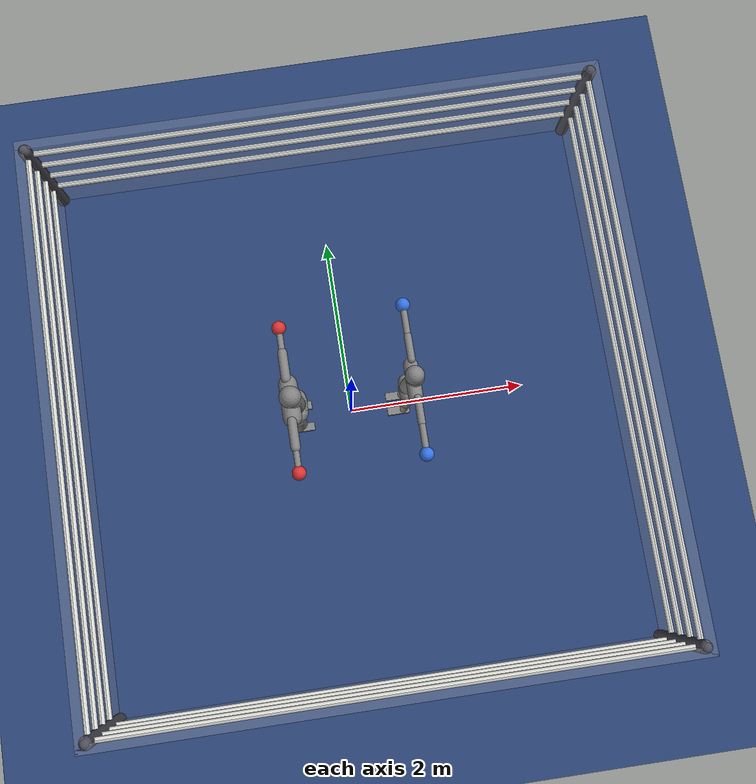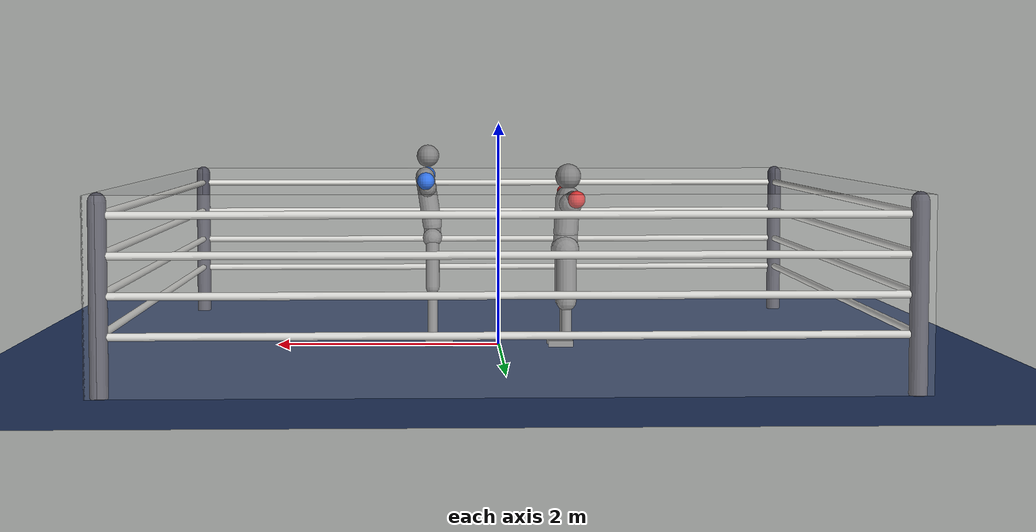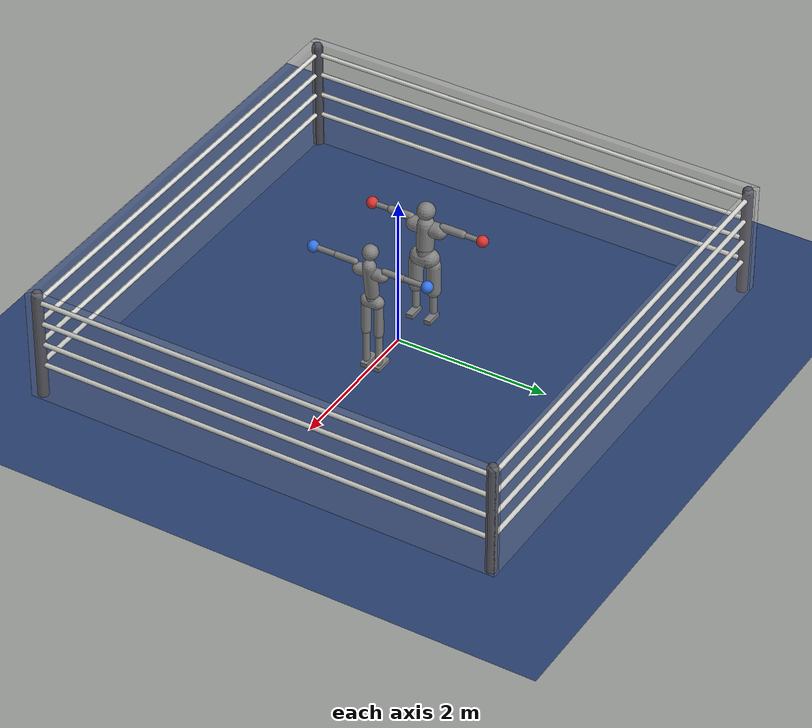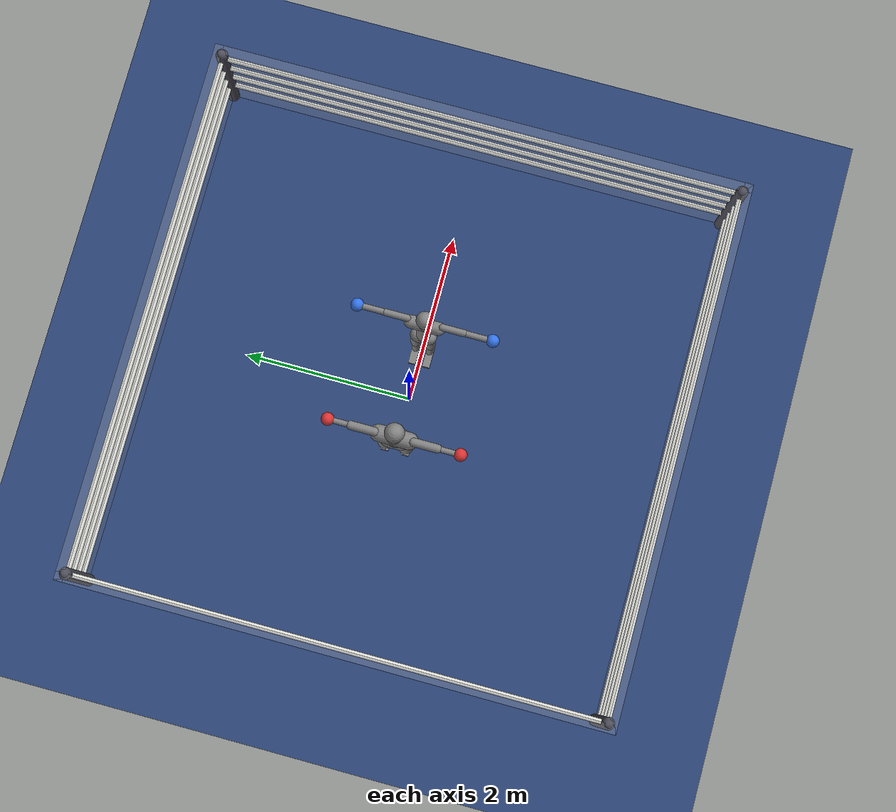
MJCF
<mujoco model="lilmatt_vs_matt_spar">
  <compiler angle="degree" inertiafromgeom="true" autolimits="true"/>
  <option timestep="0.005" iterations="10" ls_iterations="10" integrator="implicitfast">
    <flag eulerdamp="disable"/>
  </option>
  <default>
    <geom contype="1" conaffinity="1" condim="3" friction="1.0 0.005 0.0001" density="1000" margin="0"/>
    <joint limited="true"/>
    <position ctrllimited="true"/>
  </default>
  <asset>
    <texture name="grid" type="2d" builtin="checker" rgb1=".18 .28 .48" rgb2=".14 .22 .40" width="300" height="300"/>
    <material name="grid" texture="grid" texrepeat="6 6" reflectance="0"/>
  </asset>
  <worldbody>
    <light pos="0 0 5" dir="0 0 -1" directional="true"/>
    <geom name="floor" type="plane" contype="3" conaffinity="3" size="0 0 0.05" material="grid" friction="1.0 0.005 0.0001"/>
    <geom name="rope_n" type="box" pos="0.0000 3.1000 0.7500" size="3.1500 0.0500 0.7500" rgba="0.8 0.8 0.8 0.15"/>
    <geom name="rope_s" type="box" pos="0.0000 -3.1000 0.7500" size="3.1500 0.0500 0.7500" rgba="0.8 0.8 0.8 0.15"/>
    <geom name="rope_e" type="box" pos="3.1000 0.0000 0.7500" size="0.0500 3.1500 0.7500" rgba="0.8 0.8 0.8 0.15"/>
    <geom name="rope_w" type="box" pos="-3.1000 0.0000 0.7500" size="0.0500 3.1500 0.7500" rgba="0.8 0.8 0.8 0.15"/>
    <body name="a_pelvis" pos="-0.6000 0.0000 0.8672" quat="1.00000 0 0 0.00000">
      <freejoint name="a_root"/>
      <geom name="a_pelvis_geom" type="capsule" fromto="0.0000 -0.0700 0.0000 0.0000 0.0700 0.0000" size="0.1228" mass="6.8132" />
      <geom name="a_pelvis_up" type="capsule" fromto="0.0000 0.0000 0.0000 -0.0066 0.0000 0.1058" size="0.1105" mass="4.6036" />
      <body name="a_torso" pos="-0.0066 0.0000 0.1258">
        <joint name="a_abdomen_z" type="hinge" axis="0 0 1" range="-45 45" damping="0.5" armature="0.08" stiffness="0"/>
        <joint name="a_abdomen_y" type="hinge" axis="0 1 0" range="-60 30" damping="0.5" armature="0.08" stiffness="0"/>
        <joint name="a_abdomen_x" type="hinge" axis="1 0 0" range="-35 35" damping="0.5" armature="0.08" stiffness="0"/>
        <geom name="a_torso_geom" type="capsule" fromto="0.0000 0.0000 0.0200 -0.0181 0.0000 0.3354" size="0.1100" mass="28.5420" />
        <geom name="a_chest_geom" type="capsule" fromto="-0.0347 -0.1786 0.2850 -0.0347 0.1786 0.2850" size="0.0990" mass="0.5"/>
        <geom name="a_head_geom" type="sphere" pos="-0.0217 0.0000 0.5289" size="0.1155" mass="6.5124" />
        <body name="a_upper_arm_l" pos="-0.0434 0.2232 0.3563">
          <joint name="a_shoulder_x_l" type="hinge" axis="1 0 0" range="-170 30" damping="0.5" armature="0.03" stiffness="0"/>
          <joint name="a_shoulder_z_l" type="hinge" axis="0 0 1" range="-110 110" damping="0.5" armature="0.03" stiffness="0"/>
          <geom name="a_upper_arm_l_geom" type="capsule" fromto="0.0000 0.0000 0.0000 0.0000 0.2758 0.0000" size="0.0508" mass="2.2512" />
          <body name="a_forearm_l" pos="0.0000 0.2758 0.0000">
            <joint name="a_elbow_l" type="hinge" axis="0 0 1" range="-150 0" damping="0.5" armature="0.02" stiffness="0"/>
            <geom name="a_forearm_l_geom" type="capsule" fromto="0.0000 0.0000 0.0000 0.0000 0.1970 0.0000" size="0.0332" mass="1.2864" />
            <geom name="a_glove_l" type="sphere" pos="0.0000 0.2645 0.0000" size="0.0750" mass="0.7654" rgba="0.85 0.2 0.2 1"/>
          </body>
        </body>
        <body name="a_upper_arm_r" pos="-0.0434 -0.2232 0.3563">
          <joint name="a_shoulder_x_r" type="hinge" axis="1 0 0" range="-30 170" damping="0.5" armature="0.03" stiffness="0"/>
          <joint name="a_shoulder_z_r" type="hinge" axis="0 0 1" range="-110 110" damping="0.5" armature="0.03" stiffness="0"/>
          <geom name="a_upper_arm_r_geom" type="capsule" fromto="0.0000 0.0000 0.0000 0.0000 -0.2758 0.0000" size="0.0508" mass="2.2512" />
          <body name="a_forearm_r" pos="0.0000 -0.2758 0.0000">
            <joint name="a_elbow_r" type="hinge" axis="0 0 1" range="0 150" damping="0.5" armature="0.02" stiffness="0"/>
            <geom name="a_forearm_r_geom" type="capsule" fromto="0.0000 0.0000 0.0000 0.0000 -0.1970 0.0000" size="0.0332" mass="1.2864" />
            <geom name="a_glove_r" type="sphere" pos="0.0000 -0.2645 0.0000" size="0.0750" mass="0.7654" rgba="0.85 0.2 0.2 1"/>
          </body>
        </body>
      </body>
      <body name="a_thigh_l" pos="-0.0061 0.1244 -0.0919">
        <joint name="a_hip_x_l" type="hinge" axis="1 0 0" range="-40 40" damping="0.5" armature="0.1" stiffness="0"/>
        <joint name="a_hip_z_l" type="hinge" axis="0 0 1" range="-35 35" damping="0.5" armature="0.1" stiffness="0"/>
        <joint name="a_hip_y_l" type="hinge" axis="0 1 0" range="-120 30" damping="0.5" armature="0.1" stiffness="0"/>
        <geom name="a_thigh_l_geom" type="capsule" fromto="0.0000 0.0000 0.0000 0.0000 0.0000 -0.3718" size="0.0895" mass="8.0400" />
        <body name="a_shin_l" pos="0.0000 0.0000 -0.3718">
          <joint name="a_knee_l" type="hinge" axis="0 1 0" range="0 150" damping="0.5" armature="0.1" stiffness="0"/>
          <geom name="a_shin_l_geom" type="capsule" fromto="0.0000 0.0000 0.0000 0.0000 0.0000 -0.3036" size="0.0462" mass="3.7386" />
          <body name="a_foot_l" pos="0.0000 0.0000 -0.3036">
            <joint name="a_ankle_y_l" type="hinge" axis="0 1 0" range="-20 50" damping="0.5" armature="0.03" stiffness="0"/>
            <joint name="a_ankle_x_l" type="hinge" axis="1 0 0" range="-25 25" damping="0.5" armature="0.03" stiffness="0"/>
            <geom name="a_foot_l_geom" type="box" pos="0.0506 0.0000 -0.0797" size="0.1100 0.0450 0.0280" mass="1.1658" friction="1.0 0.005 0.0001"/>
            <site name="a_foot_l_site" pos="0.0506 0.0000 -0.0797" size="0.01"/>
          </body>
        </body>
      </body>
      <body name="a_thigh_r" pos="-0.0061 -0.1244 -0.0919">
        <joint name="a_hip_x_r" type="hinge" axis="1 0 0" range="-40 40" damping="0.5" armature="0.1" stiffness="0"/>
        <joint name="a_hip_z_r" type="hinge" axis="0 0 1" range="-35 35" damping="0.5" armature="0.1" stiffness="0"/>
        <joint name="a_hip_y_r" type="hinge" axis="0 1 0" range="-120 30" damping="0.5" armature="0.1" stiffness="0"/>
        <geom name="a_thigh_r_geom" type="capsule" fromto="0.0000 0.0000 0.0000 0.0000 0.0000 -0.3718" size="0.0895" mass="8.0400" />
        <body name="a_shin_r" pos="0.0000 0.0000 -0.3718">
          <joint name="a_knee_r" type="hinge" axis="0 1 0" range="0 150" damping="0.5" armature="0.1" stiffness="0"/>
          <geom name="a_shin_r_geom" type="capsule" fromto="0.0000 0.0000 0.0000 0.0000 0.0000 -0.3036" size="0.0462" mass="3.7386" />
          <body name="a_foot_r" pos="0.0000 0.0000 -0.3036">
            <joint name="a_ankle_y_r" type="hinge" axis="0 1 0" range="-20 50" damping="0.5" armature="0.03" stiffness="0"/>
            <joint name="a_ankle_x_r" type="hinge" axis="1 0 0" range="-25 25" damping="0.5" armature="0.03" stiffness="0"/>
            <geom name="a_foot_r_geom" type="box" pos="0.0506 0.0000 -0.0797" size="0.1100 0.0450 0.0280" mass="1.1658" friction="1.0 0.005 0.0001"/>
            <site name="a_foot_r_site" pos="0.0506 0.0000 -0.0797" size="0.01"/>
          </body>
        </body>
      </body>
    </body>
    <body name="b_pelvis" pos="0.6000 0.0000 0.9741" quat="0.00000 0 0 1.00000">
      <freejoint name="b_root"/>
      <geom name="b_pelvis_geom" type="capsule" fromto="0.0000 -0.0700 0.0000 0.0000 0.0700 0.0000" size="0.0850" mass="7.0977" />
      <geom name="b_pelvis_up" type="capsule" fromto="0.0000 0.0000 0.0000 -0.0008 0.0000 0.0758" size="0.0765" mass="4.0351" />
      <body name="b_torso" pos="-0.0008 0.0000 0.0958">
        <joint name="b_abdomen_z" type="hinge" axis="0 0 1" range="-45 45" damping="0.5" armature="0.08" stiffness="0"/>
        <joint name="b_abdomen_y" type="hinge" axis="0 1 0" range="-60 30" damping="0.5" armature="0.08" stiffness="0"/>
        <joint name="b_abdomen_x" type="hinge" axis="1 0 0" range="-35 35" damping="0.5" armature="0.08" stiffness="0"/>
        <geom name="b_torso_geom" type="capsule" fromto="0.0000 0.0000 0.0200 -0.0653 -0.0000 0.4511" size="0.0850" mass="27.8320" />
        <geom name="b_chest_geom" type="capsule" fromto="-0.0402 -0.1614 0.3530 -0.0402 0.1614 0.3530" size="0.0765" mass="0.5"/>
        <geom name="b_head_geom" type="sphere" pos="-0.0385 -0.0000 0.6398" size="0.1000" mass="6.3504" />
        <body name="b_upper_arm_l" pos="-0.0503 0.2018 0.4412">
          <joint name="b_shoulder_x_l" type="hinge" axis="1 0 0" range="-170 30" damping="0.5" armature="0.03" stiffness="0"/>
          <joint name="b_shoulder_z_l" type="hinge" axis="0 0 1" range="-110 110" damping="0.5" armature="0.03" stiffness="0"/>
          <geom name="b_upper_arm_l_geom" type="capsule" fromto="0.0000 0.0000 0.0000 0.0000 0.2524 0.0000" size="0.0400" mass="2.1952" />
          <body name="b_forearm_l" pos="0.0000 0.2524 0.0000">
            <joint name="b_elbow_l" type="hinge" axis="0 0 1" range="-150 0" damping="0.5" armature="0.02" stiffness="0"/>
            <geom name="b_forearm_l_geom" type="capsule" fromto="0.0000 0.0000 0.0000 0.0000 0.2567 0.0000" size="0.0350" mass="1.2544" />
            <geom name="b_glove_l" type="sphere" pos="0.0000 0.3242 0.0000" size="0.0750" mass="0.7534" rgba="0.2 0.45 0.9 1"/>
          </body>
        </body>
        <body name="b_upper_arm_r" pos="-0.0503 -0.2018 0.4412">
          <joint name="b_shoulder_x_r" type="hinge" axis="1 0 0" range="-30 170" damping="0.5" armature="0.03" stiffness="0"/>
          <joint name="b_shoulder_z_r" type="hinge" axis="0 0 1" range="-110 110" damping="0.5" armature="0.03" stiffness="0"/>
          <geom name="b_upper_arm_r_geom" type="capsule" fromto="0.0000 0.0000 0.0000 0.0000 -0.2524 0.0000" size="0.0400" mass="2.1952" />
          <body name="b_forearm_r" pos="0.0000 -0.2524 0.0000">
            <joint name="b_elbow_r" type="hinge" axis="0 0 1" range="0 150" damping="0.5" armature="0.02" stiffness="0"/>
            <geom name="b_forearm_r_geom" type="capsule" fromto="0.0000 0.0000 0.0000 0.0000 -0.2567 0.0000" size="0.0350" mass="1.2544" />
            <geom name="b_glove_r" type="sphere" pos="0.0000 -0.3242 0.0000" size="0.0750" mass="0.7534" rgba="0.2 0.45 0.9 1"/>
          </body>
        </body>
      </body>
      <body name="b_thigh_l" pos="0.0008 0.0857 -0.0302">
        <joint name="b_hip_x_l" type="hinge" axis="1 0 0" range="-40 40" damping="0.5" armature="0.1" stiffness="0"/>
        <joint name="b_hip_z_l" type="hinge" axis="0 0 1" range="-35 35" damping="0.5" armature="0.1" stiffness="0"/>
        <joint name="b_hip_y_l" type="hinge" axis="0 1 0" range="-120 30" damping="0.5" armature="0.1" stiffness="0"/>
        <geom name="b_thigh_l_geom" type="capsule" fromto="0.0000 0.0000 0.0000 0.0000 0.0000 -0.4154" size="0.0600" mass="7.8400" />
        <body name="b_shin_l" pos="0.0000 0.0000 -0.4154">
          <joint name="b_knee_l" type="hinge" axis="0 1 0" range="0 150" damping="0.5" armature="0.1" stiffness="0"/>
          <geom name="b_shin_l_geom" type="capsule" fromto="0.0000 0.0000 0.0000 0.0000 0.0000 -0.4309" size="0.0450" mass="3.6456" />
          <body name="b_foot_l" pos="0.0000 0.0000 -0.4309">
            <joint name="b_ankle_y_l" type="hinge" axis="0 1 0" range="-20 50" damping="0.5" armature="0.03" stiffness="0"/>
            <joint name="b_ankle_x_l" type="hinge" axis="1 0 0" range="-25 25" damping="0.5" armature="0.03" stiffness="0"/>
            <geom name="b_foot_l_geom" type="box" pos="0.0581 0.0000 -0.0708" size="0.1262 0.0450 0.0280" mass="1.1368" friction="1.0 0.005 0.0001"/>
            <site name="b_foot_l_site" pos="0.0581 0.0000 -0.0708" size="0.01"/>
          </body>
        </body>
      </body>
      <body name="b_thigh_r" pos="0.0008 -0.0857 -0.0302">
        <joint name="b_hip_x_r" type="hinge" axis="1 0 0" range="-40 40" damping="0.5" armature="0.1" stiffness="0"/>
        <joint name="b_hip_z_r" type="hinge" axis="0 0 1" range="-35 35" damping="0.5" armature="0.1" stiffness="0"/>
        <joint name="b_hip_y_r" type="hinge" axis="0 1 0" range="-120 30" damping="0.5" armature="0.1" stiffness="0"/>
        <geom name="b_thigh_r_geom" type="capsule" fromto="0.0000 0.0000 0.0000 0.0000 0.0000 -0.4154" size="0.0600" mass="7.8400" />
        <body name="b_shin_r" pos="0.0000 0.0000 -0.4154">
          <joint name="b_knee_r" type="hinge" axis="0 1 0" range="0 150" damping="0.5" armature="0.1" stiffness="0"/>
          <geom name="b_shin_r_geom" type="capsule" fromto="0.0000 0.0000 0.0000 0.0000 0.0000 -0.4309" size="0.0450" mass="3.6456" />
          <body name="b_foot_r" pos="0.0000 0.0000 -0.4309">
            <joint name="b_ankle_y_r" type="hinge" axis="0 1 0" range="-20 50" damping="0.5" armature="0.03" stiffness="0"/>
            <joint name="b_ankle_x_r" type="hinge" axis="1 0 0" range="-25 25" damping="0.5" armature="0.03" stiffness="0"/>
            <geom name="b_foot_r_geom" type="box" pos="0.0581 0.0000 -0.0708" size="0.1262 0.0450 0.0280" mass="1.1368" friction="1.0 0.005 0.0001"/>
            <site name="b_foot_r_site" pos="0.0581 0.0000 -0.0708" size="0.01"/>
          </body>
        </body>
      </body>
    </body>
      <geom name="rope_n_0" type="capsule" fromto="-3.05 3.05 0.45 3.05 3.05 0.45" size="0.03" solref="0.2 1" contype="3" conaffinity="3" rgba="0.86 0.86 0.84 1"/>
    <geom name="rope_s_0" type="capsule" fromto="-3.05 -3.05 0.45 3.05 -3.05 0.45" size="0.03" solref="0.2 1" contype="3" conaffinity="3" rgba="0.86 0.86 0.84 1"/>
    <geom name="rope_e_0" type="capsule" fromto="3.05 -3.05 0.45 3.05 3.05 0.45" size="0.03" solref="0.2 1" contype="3" conaffinity="3" rgba="0.86 0.86 0.84 1"/>
    <geom name="rope_w_0" type="capsule" fromto="-3.05 -3.05 0.45 -3.05 3.05 0.45" size="0.03" solref="0.2 1" contype="3" conaffinity="3" rgba="0.86 0.86 0.84 1"/>
    <geom name="rope_n_1" type="capsule" fromto="-3.05 3.05 0.75 3.05 3.05 0.75" size="0.03" solref="0.2 1" contype="3" conaffinity="3" rgba="0.86 0.86 0.84 1"/>
    <geom name="rope_s_1" type="capsule" fromto="-3.05 -3.05 0.75 3.05 -3.05 0.75" size="0.03" solref="0.2 1" contype="3" conaffinity="3" rgba="0.86 0.86 0.84 1"/>
    <geom name="rope_e_1" type="capsule" fromto="3.05 -3.05 0.75 3.05 3.05 0.75" size="0.03" solref="0.2 1" contype="3" conaffinity="3" rgba="0.86 0.86 0.84 1"/>
    <geom name="rope_w_1" type="capsule" fromto="-3.05 -3.05 0.75 -3.05 3.05 0.75" size="0.03" solref="0.2 1" contype="3" conaffinity="3" rgba="0.86 0.86 0.84 1"/>
    <geom name="rope_n_2" type="capsule" fromto="-3.05 3.05 1.05 3.05 3.05 1.05" size="0.03" solref="0.2 1" contype="3" conaffinity="3" rgba="0.86 0.86 0.84 1"/>
    <geom name="rope_s_2" type="capsule" fromto="-3.05 -3.05 1.05 3.05 -3.05 1.05" size="0.03" solref="0.2 1" contype="3" conaffinity="3" rgba="0.86 0.86 0.84 1"/>
    <geom name="rope_e_2" type="capsule" fromto="3.05 -3.05 1.05 3.05 3.05 1.05" size="0.03" solref="0.2 1" contype="3" conaffinity="3" rgba="0.86 0.86 0.84 1"/>
    <geom name="rope_w_2" type="capsule" fromto="-3.05 -3.05 1.05 -3.05 3.05 1.05" size="0.03" solref="0.2 1" contype="3" conaffinity="3" rgba="0.86 0.86 0.84 1"/>
    <geom name="rope_n_3" type="capsule" fromto="-3.05 3.05 1.35 3.05 3.05 1.35" size="0.03" solref="0.2 1" contype="3" conaffinity="3" rgba="0.86 0.86 0.84 1"/>
    <geom name="rope_s_3" type="capsule" fromto="-3.05 -3.05 1.35 3.05 -3.05 1.35" size="0.03" solref="0.2 1" contype="3" conaffinity="3" rgba="0.86 0.86 0.84 1"/>
    <geom name="rope_e_3" type="capsule" fromto="3.05 -3.05 1.35 3.05 3.05 1.35" size="0.03" solref="0.2 1" contype="3" conaffinity="3" rgba="0.86 0.86 0.84 1"/>
    <geom name="rope_w_3" type="capsule" fromto="-3.05 -3.05 1.35 -3.05 3.05 1.35" size="0.03" solref="0.2 1" contype="3" conaffinity="3" rgba="0.86 0.86 0.84 1"/>
    <geom name="post_ne" type="capsule" fromto="3.05 3.05 0 3.05 3.05 1.45" size="0.07" contype="3" conaffinity="3" rgba="0.3 0.3 0.35 1"/>
    <geom name="post_nw" type="capsule" fromto="-3.05 3.05 0 -3.05 3.05 1.45" size="0.07" contype="3" conaffinity="3" rgba="0.3 0.3 0.35 1"/>
    <geom name="post_se" type="capsule" fromto="3.05 -3.05 0 3.05 -3.05 1.45" size="0.07" contype="3" conaffinity="3" rgba="0.3 0.3 0.35 1"/>
    <geom name="post_sw" type="capsule" fromto="-3.05 -3.05 0 -3.05 -3.05 1.45" size="0.07" contype="3" conaffinity="3" rgba="0.3 0.3 0.35 1"/>
  </worldbody>
  <contact>
    <exclude body1="a_pelvis" body2="a_torso"/>
    <exclude body1="a_pelvis" body2="a_thigh_l"/>
    <exclude body1="a_thigh_l" body2="a_shin_l"/>
    <exclude body1="a_shin_l" body2="a_foot_l"/>
    <exclude body1="a_torso" body2="a_upper_arm_l"/>
    <exclude body1="a_upper_arm_l" body2="a_forearm_l"/>
    <exclude body1="a_pelvis" body2="a_thigh_r"/>
    <exclude body1="a_thigh_r" body2="a_shin_r"/>
    <exclude body1="a_shin_r" body2="a_foot_r"/>
    <exclude body1="a_torso" body2="a_upper_arm_r"/>
    <exclude body1="a_upper_arm_r" body2="a_forearm_r"/>
    <exclude body1="b_pelvis" body2="b_torso"/>
    <exclude body1="b_pelvis" body2="b_thigh_l"/>
    <exclude body1="b_thigh_l" body2="b_shin_l"/>
    <exclude body1="b_shin_l" body2="b_foot_l"/>
    <exclude body1="b_torso" body2="b_upper_arm_l"/>
    <exclude body1="b_upper_arm_l" body2="b_forearm_l"/>
    <exclude body1="b_pelvis" body2="b_thigh_r"/>
    <exclude body1="b_thigh_r" body2="b_shin_r"/>
    <exclude body1="b_shin_r" body2="b_foot_r"/>
    <exclude body1="b_torso" body2="b_upper_arm_r"/>
    <exclude body1="b_upper_arm_r" body2="b_forearm_r"/>
  </contact>
  <actuator>
    <position name="a_abdomen_z" joint="a_abdomen_z" kp="368.1" kv="17.178" forcerange="-139.06 139.06" ctrlrange="-0.7854 0.7854"/>
    <position name="a_abdomen_y" joint="a_abdomen_y" kp="368.1" kv="17.178" forcerange="-139.06 139.06" ctrlrange="-1.0472 0.5236"/>
    <position name="a_abdomen_x" joint="a_abdomen_x" kp="368.1" kv="17.178" forcerange="-139.06 139.06" ctrlrange="-0.6109 0.6109"/>
    <position name="a_shoulder_x_l" joint="a_shoulder_x_l" kp="130.88" kv="6.544" forcerange="-81.8 81.8" ctrlrange="-2.9671 0.5236"/>
    <position name="a_shoulder_z_l" joint="a_shoulder_z_l" kp="130.88" kv="6.544" forcerange="-81.8 81.8" ctrlrange="-1.9199 1.9199"/>
    <position name="a_elbow_l" joint="a_elbow_l" kp="89.98" kv="4.499" forcerange="-57.26 57.26" ctrlrange="-2.6180 0.0000"/>
    <position name="a_shoulder_x_r" joint="a_shoulder_x_r" kp="130.88" kv="6.544" forcerange="-81.8 81.8" ctrlrange="-0.5236 2.9671"/>
    <position name="a_shoulder_z_r" joint="a_shoulder_z_r" kp="130.88" kv="6.544" forcerange="-81.8 81.8" ctrlrange="-1.9199 1.9199"/>
    <position name="a_elbow_r" joint="a_elbow_r" kp="89.98" kv="4.499" forcerange="-57.26 57.26" ctrlrange="0.0000 2.6180"/>
    <position name="a_hip_x_l" joint="a_hip_x_l" kp="490.8" kv="24.54" forcerange="-196.32 196.32" ctrlrange="-0.6981 0.6981"/>
    <position name="a_hip_z_l" joint="a_hip_z_l" kp="490.8" kv="24.54" forcerange="-196.32 196.32" ctrlrange="-0.6109 0.6109"/>
    <position name="a_hip_y_l" joint="a_hip_y_l" kp="490.8" kv="24.54" forcerange="-196.32 196.32" ctrlrange="-2.0944 0.5236"/>
    <position name="a_knee_l" joint="a_knee_l" kp="490.8" kv="24.54" forcerange="-212.68 212.68" ctrlrange="0.0000 2.6180"/>
    <position name="a_ankle_y_l" joint="a_ankle_y_l" kp="613.5" kv="24.54" forcerange="-179.96 179.96" ctrlrange="-0.3491 0.8727"/>
    <position name="a_ankle_x_l" joint="a_ankle_x_l" kp="65.44" kv="3.272" forcerange="-49.08 49.08" ctrlrange="-0.4363 0.4363"/>
    <position name="a_hip_x_r" joint="a_hip_x_r" kp="490.8" kv="24.54" forcerange="-196.32 196.32" ctrlrange="-0.6981 0.6981"/>
    <position name="a_hip_z_r" joint="a_hip_z_r" kp="490.8" kv="24.54" forcerange="-196.32 196.32" ctrlrange="-0.6109 0.6109"/>
    <position name="a_hip_y_r" joint="a_hip_y_r" kp="490.8" kv="24.54" forcerange="-196.32 196.32" ctrlrange="-2.0944 0.5236"/>
    <position name="a_knee_r" joint="a_knee_r" kp="490.8" kv="24.54" forcerange="-212.68 212.68" ctrlrange="0.0000 2.6180"/>
    <position name="a_ankle_y_r" joint="a_ankle_y_r" kp="613.5" kv="24.54" forcerange="-179.96 179.96" ctrlrange="-0.3491 0.8727"/>
    <position name="a_ankle_x_r" joint="a_ankle_x_r" kp="65.44" kv="3.272" forcerange="-49.08 49.08" ctrlrange="-0.4363 0.4363"/>
    <position name="b_abdomen_z" joint="b_abdomen_z" kp="450.0" kv="21.0" forcerange="-170.0 170.0" ctrlrange="-0.7854 0.7854"/>
    <position name="b_abdomen_y" joint="b_abdomen_y" kp="450.0" kv="21.0" forcerange="-170.0 170.0" ctrlrange="-1.0472 0.5236"/>
    <position name="b_abdomen_x" joint="b_abdomen_x" kp="450.0" kv="21.0" forcerange="-170.0 170.0" ctrlrange="-0.6109 0.6109"/>
    <position name="b_shoulder_x_l" joint="b_shoulder_x_l" kp="160.0" kv="8.0" forcerange="-100.0 100.0" ctrlrange="-2.9671 0.5236"/>
    <position name="b_shoulder_z_l" joint="b_shoulder_z_l" kp="160.0" kv="8.0" forcerange="-100.0 100.0" ctrlrange="-1.9199 1.9199"/>
    <position name="b_elbow_l" joint="b_elbow_l" kp="110.0" kv="5.5" forcerange="-70.0 70.0" ctrlrange="-2.6180 0.0000"/>
    <position name="b_shoulder_x_r" joint="b_shoulder_x_r" kp="160.0" kv="8.0" forcerange="-100.0 100.0" ctrlrange="-0.5236 2.9671"/>
    <position name="b_shoulder_z_r" joint="b_shoulder_z_r" kp="160.0" kv="8.0" forcerange="-100.0 100.0" ctrlrange="-1.9199 1.9199"/>
    <position name="b_elbow_r" joint="b_elbow_r" kp="110.0" kv="5.5" forcerange="-70.0 70.0" ctrlrange="0.0000 2.6180"/>
    <position name="b_hip_x_l" joint="b_hip_x_l" kp="600.0" kv="30.0" forcerange="-240.0 240.0" ctrlrange="-0.6981 0.6981"/>
    <position name="b_hip_z_l" joint="b_hip_z_l" kp="600.0" kv="30.0" forcerange="-240.0 240.0" ctrlrange="-0.6109 0.6109"/>
    <position name="b_hip_y_l" joint="b_hip_y_l" kp="600.0" kv="30.0" forcerange="-240.0 240.0" ctrlrange="-2.0944 0.5236"/>
    <position name="b_knee_l" joint="b_knee_l" kp="600.0" kv="30.0" forcerange="-260.0 260.0" ctrlrange="0.0000 2.6180"/>
    <position name="b_ankle_y_l" joint="b_ankle_y_l" kp="750.0" kv="30.0" forcerange="-220.0 220.0" ctrlrange="-0.3491 0.8727"/>
    <position name="b_ankle_x_l" joint="b_ankle_x_l" kp="80.0" kv="4.0" forcerange="-60.0 60.0" ctrlrange="-0.4363 0.4363"/>
    <position name="b_hip_x_r" joint="b_hip_x_r" kp="600.0" kv="30.0" forcerange="-240.0 240.0" ctrlrange="-0.6981 0.6981"/>
    <position name="b_hip_z_r" joint="b_hip_z_r" kp="600.0" kv="30.0" forcerange="-240.0 240.0" ctrlrange="-0.6109 0.6109"/>
    <position name="b_hip_y_r" joint="b_hip_y_r" kp="600.0" kv="30.0" forcerange="-240.0 240.0" ctrlrange="-2.0944 0.5236"/>
    <position name="b_knee_r" joint="b_knee_r" kp="600.0" kv="30.0" forcerange="-260.0 260.0" ctrlrange="0.0000 2.6180"/>
    <position name="b_ankle_y_r" joint="b_ankle_y_r" kp="750.0" kv="30.0" forcerange="-220.0 220.0" ctrlrange="-0.3491 0.8727"/>
    <position name="b_ankle_x_r" joint="b_ankle_x_r" kp="80.0" kv="4.0" forcerange="-60.0 60.0" ctrlrange="-0.4363 0.4363"/>
  </actuator>
  <keyframe>
    <key name="stand" qpos="-0.6000 0.0000 0.8593 1.00000 0 0 0.00000 0.0000 0.0000 0.0000 -1.3265 -0.7330 -1.9548 1.3265 0.7330 1.9548 0.0000 0.0000 -0.1621 0.4538 -0.2916 0.0000 0.0000 0.0000 -0.1621 0.4538 -0.2916 0.0000 0.6000 0.0000 0.9544 0.00000 0 0 1.00000 0.0000 0.0000 0.0000 -1.3265 -0.7330 -1.9548 1.3265 0.7330 1.9548 0.0000 0.0000 -0.1765 0.4538 -0.2773 0.0000 0.0000 0.0000 -0.1765 0.4538 -0.2773 0.0000"/>
  </keyframe>
</mujoco>
